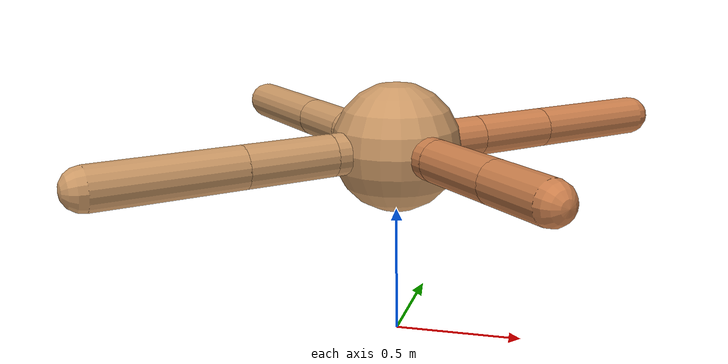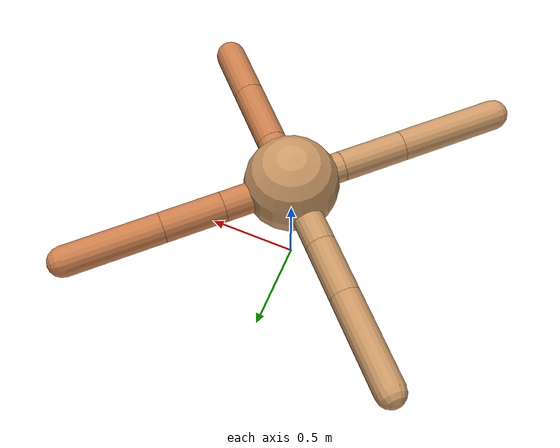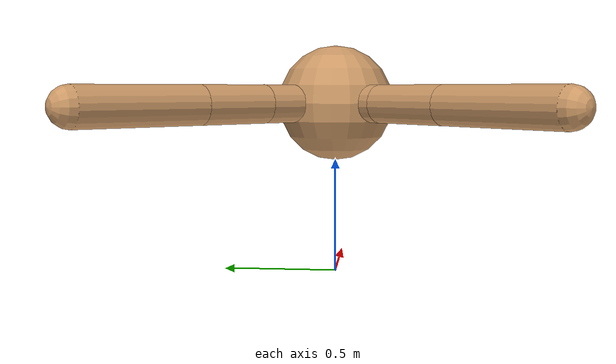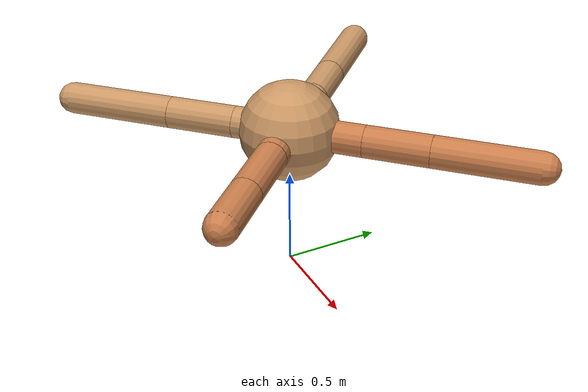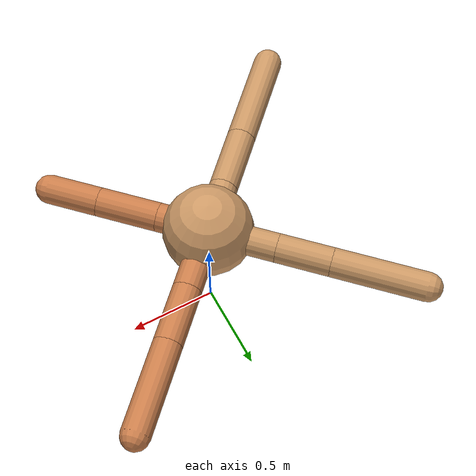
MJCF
<mujoco model="ant">
  <compiler angle="degree" coordinate="local" inertiafromgeom="true" />
  <option integrator="RK4" timestep="0.01" />
  <custom>
    <numeric data="0.0 0.0 0.55 1.0 0.0 0.0 0.0 0.0 1.0 0.0 -1.0 0.0 -1.0 0.0 1.0" name="init_qpos" />
  </custom>
  <default>
    <joint armature="1" damping="1" limited="true" />
    <geom conaffinity="0" condim="3" density="5.0" friction="1.5 0.1 0.1" margin="0.01" rgba="0.8 0.6 0.4 1" />
  </default>
  <worldbody>
    <body name="torso" pos="0 0 0.75">
      <geom name="torso_geom" pos="0 0 0" size="0.25" type="sphere" />

      <body name="front_left_leg" pos="0 0 0">
        <geom fromto="0.0 0.0 0.0 0.2665022776894746 0.2665022776894746 0.0" name="aux_1_geom" size="0.08" type="capsule" rgba=".8 .5 .3 1" />
        <body name="aux_1" pos="0.2665022776894746 0.2665022776894746 0.0">
          <joint axis="0 0 1" name="hip_1" pos="0.0 0.0 0.0" range="-40 40" type="hinge" />
          <geom fromto="0.0 0.0 0.0 0.23064551718778936 0.23064551718778936 0.0" name="left_leg_geom" size="0.08" type="capsule" rgba=".8 .5 .3 1" />
          <body pos="0.23064551718778936 0.23064551718778936 0.0" name="front_left_foot">
            <joint axis="-1 1 0" name="ankle_1" pos="0.0 0.0 0.0" range="30 100" type="hinge" />
            <geom fromto="0.0 0.0 0.0 0.3641912124984546 0.3641912124984546 0.0" name="left_ankle_geom" size="0.08" type="capsule" rgba=".8 .5 .3 1" />
          </body>
        </body>
      </body>
      <body name="front_right_leg" pos="0 0 0">
        <geom fromto="0.0 0.0 0.0 -0.2734719733561796 0.2734719733561796 0.0" name="aux_2_geom" size="0.08" type="capsule" />
        <body name="aux_2" pos="-0.2734719733561796 0.2734719733561796 0.0">
          <joint axis="0 0 1" name="hip_2" pos="0.0 0.0 0.0" range="-40 40" type="hinge" />
          <geom fromto="0.0 0.0 0.0 -0.21303286985398806 0.21303286985398806 0.0" name="right_leg_geom" size="0.08" type="capsule" />
          <body pos="-0.21303286985398806 0.21303286985398806 0.0" name="front_right_foot">
            <joint axis="1 1 0" name="ankle_2" pos="0.0 0.0 0.0" range="-100 -30" type="hinge" />
            <geom fromto="0.0 0.0 0.0 -0.3688697821392071 0.3688697821392071 0.0" name="right_ankle_geom" size="0.08" type="capsule" />
          </body>
        </body>
      </body>
      <body name="left_back_leg" pos="0 0 0">
        <geom fromto="0.0 0.0 0.0 -0.2 -0.2 0.0" name="aux_3_geom" size="0.08" type="capsule" />
        <body name="aux_3" pos="-0.2 -0.2 0.0">
          <joint axis="0 0 1" name="hip_3" pos="0.0 0.0 0.0" range="-40 40" type="hinge" />
          <geom fromto="0.0 0.0 0.0 -0.24280626562598556 -0.24280626562598556 0.0" name="back_leg_geom" size="0.08" type="capsule" />
          <body pos="-0.24280626562598556 -0.24280626562598556 0.0" name="left_back_foot">
            <joint axis="-1 1 0" name="ankle_3" pos="0.0 0.0 0.0" range="-100 -30" type="hinge" />
            <geom fromto="0.0 0.0 0.0 -0.38667087159259206 -0.38667087159259206 0.0" name="third_ankle_geom" size="0.08" type="capsule" />
          </body>
        </body>
      </body>
      <body name="right_back_leg" pos="0 0 0">
        <geom fromto="0.0 0.0 0.0 0.2 -0.2 0.0" name="aux_4_geom" size="0.08" type="capsule" rgba=".8 .5 .3 1" />
        <body name="aux_4" pos="0.2 -0.2 0.0">
          <joint axis="0 0 1" name="hip_4" pos="0.0 0.0 0.0" range="-40 40" type="hinge" />
          <geom fromto="0.0 0.0 0.0 0.23979626006243576 -0.23979626006243576 0.0" name="rightback_leg_geom" size="0.08" type="capsule" rgba=".8 .5 .3 1" />
          <body pos="0.23979626006243576 -0.23979626006243576 0.0" name="right_back_foot">
            <joint axis="1 1 0" name="ankle_4" pos="0.0 0.0 0.0" range="30 100" type="hinge" />
            <geom fromto="0.0 0.0 0.0 0.20331364598077953 -0.20331364598077953 0.0" name="fourth_ankle_geom" size="0.08" type="capsule" rgba=".8 .5 .3 1" />
          </body>
        </body>
      </body>
    </body>
  </worldbody>
  <actuator>
    <motor ctrllimited="true" ctrlrange="-1.0 1.0" joint="hip_4" gear="150" />
    <motor ctrllimited="true" ctrlrange="-1.0 1.0" joint="ankle_4" gear="150" />
    <motor ctrllimited="true" ctrlrange="-1.0 1.0" joint="hip_1" gear="150" />
    <motor ctrllimited="true" ctrlrange="-1.0 1.0" joint="ankle_1" gear="150" />
    <motor ctrllimited="true" ctrlrange="-1.0 1.0" joint="hip_2" gear="150" />
    <motor ctrllimited="true" ctrlrange="-1.0 1.0" joint="ankle_2" gear="150" />
    <motor ctrllimited="true" ctrlrange="-1.0 1.0" joint="hip_3" gear="150" />
    <motor ctrllimited="true" ctrlrange="-1.0 1.0" joint="ankle_3" gear="150" />
  </actuator>
</mujoco>
